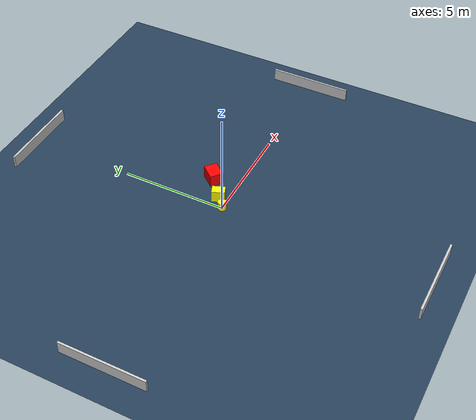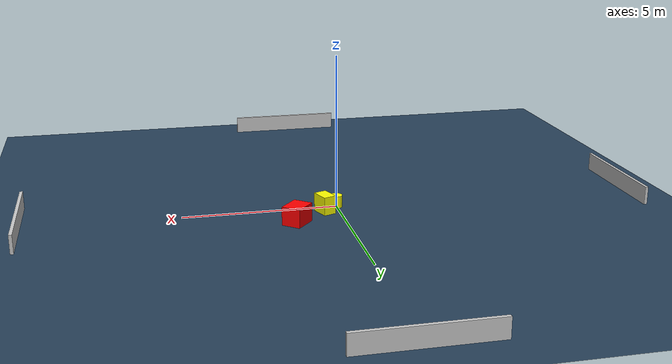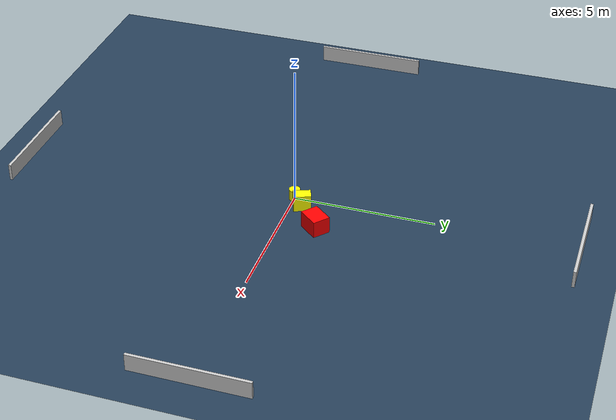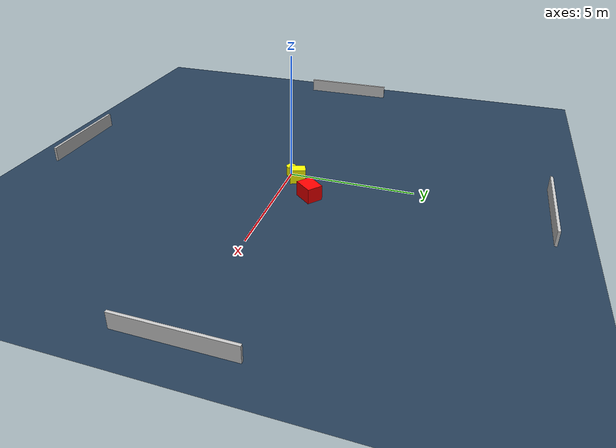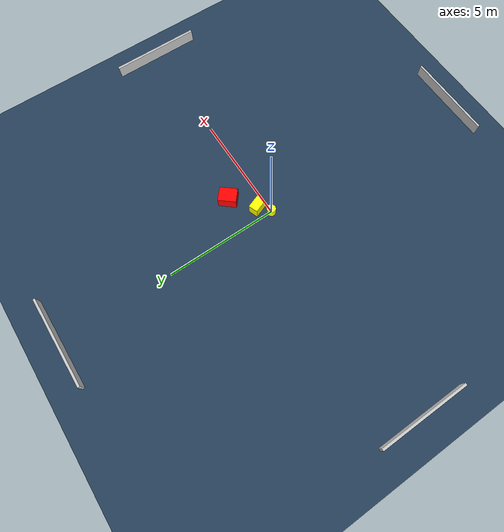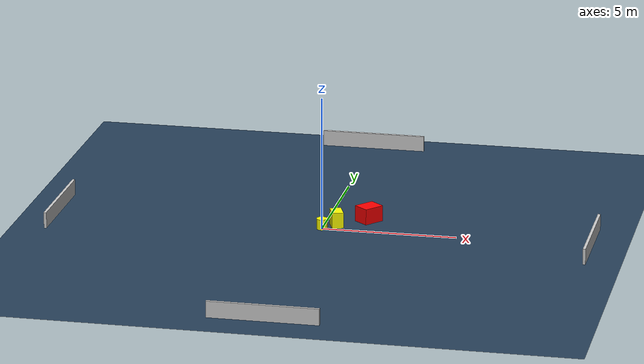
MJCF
<?xml version="1.0" ?>
<mujoco model="generated_environment">
  <option timestep="0.01" integrator="RK4" cone="elliptic"/>
  <default>
    <geom density="1"/>
  </default>
  <asset>
    <texture builtin="gradient" height="3072" name="skybox" rgb1="0.3 0.5 0.7" rgb2="0 0 0" type="skybox" width="512"/>
    <texture builtin="checker" height="300" name="groundplane" rgb1="0.2 0.3 0.4" rgb2="0.1 0.2 0.3" type="2d" width="300"/>
    <material name="groundplane" reflectance="0.2" texrepeat="5 5" texture="groundplane"/>
  </asset>
  <worldbody>
    <light dir="0 0 -1" directional="true" pos="0 0 1.5"/>
    <geom condim="3" friction="0.5 0.005 0.001" material="groundplane" name="floor" pos="0 0 0" size="0 0 0.05" type="plane"/>
    <body name="walls">
      <geom name="wall_1" condim="4" pos="-10.0 0.0 0.3" rgba="0.800000011920929 0.800000011920929 0.800000011920929 1.0" size="0.05 2.0 0.3" type="box"/>
      <geom name="wall_2" condim="4" pos="10.0 0.0 0.3" rgba="0.800000011920929 0.800000011920929 0.800000011920929 1.0" size="0.05 2.0 0.3" type="box"/>
      <geom name="wall_3" condim="4" pos="0.0 -10.0 0.3" rgba="0.800000011920929 0.800000011920929 0.800000011920929 1.0" size="2.0 0.05 0.3" type="box"/>
      <geom name="wall_4" condim="4" pos="0.0 10.0 0.3" rgba="0.800000011920929 0.800000011920929 0.800000011920929 1.0" size="2.0 0.05 0.3" type="box"/>
    </body>
    <body name="robot">
      <joint name="joint_x" type="slide" pos="0 0 0" axis="1 0 0"/>
      <joint name="joint_y" type="slide" pos="0 0 0" axis="0 1 0"/>
      <geom name="robot" type="cylinder" pos="0.0 0.0 0.2" size="0.2 0.2 0.0" mass="5.0" friction="1.0 0.005 0.0001" condim="4" rgba="1.0 1.0 0.0 1.0"/>
    </body>
    <body name="obstacle_1_movable">
      <geom name="obstacle_1_movable" condim="4" pos="0.4633066036934778 0.41741863916831146 0.3" euler="0 0 110.80163176199697" friction="0.0 0.005 0.001" rgba="1.0 1.0 0.0 1.0" size="0.30804904753419055 0.209553220665992 0.3" type="box" mass="0.1"/>
      <joint type="free"/>
    </body>
    <body name="obstacle_2_static">
      <geom name="obstacle_2_static" condim="4" pos="1.5227859066834268 1.2269472577184326 0.3" euler="0 0 139.7284445643564" friction="0.0 0.005 0.001" rgba="1.0 0.0 0.0 1.0" size="0.3154191013645673 0.39832512535111836 0.3" type="box"/>
    </body>
  </worldbody>
  <actuator>
    <motor name="actuator_x" joint="joint_x" gear="1" ctrlrange="-1 1"/>
    <motor name="actuator_y" joint="joint_y" gear="1" ctrlrange="-1 1"/>
  </actuator>
</mujoco>
